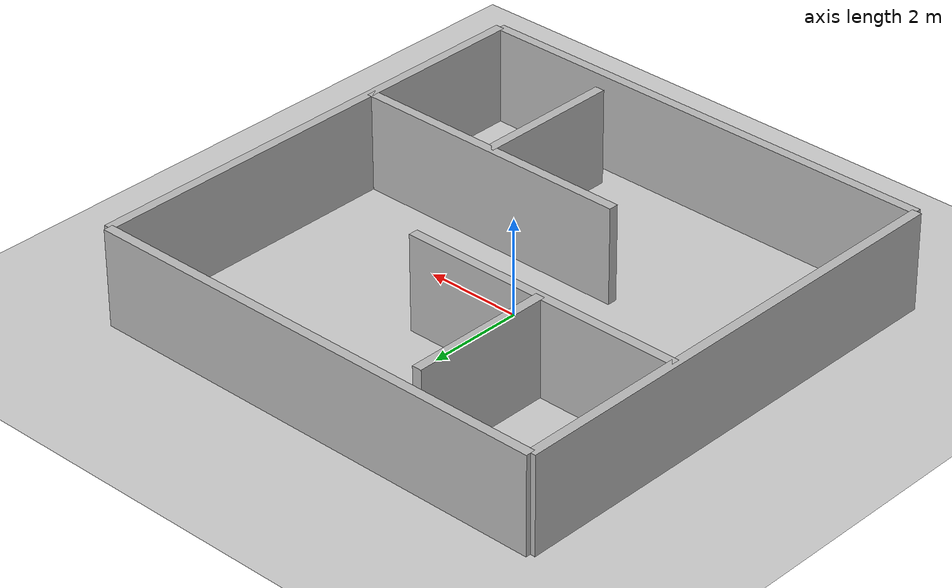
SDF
<?xml version="1.0" ?>
<sdf version="1.8">
  <world name="collapsed_structure">
    <!-- Required plugins for modern Gazebo -->
    <physics name="1ms" type="ignored">
      <max_step_size>0.001</max_step_size>
      <real_time_factor>1.0</real_time_factor>
    </physics>
    <plugin filename="gz-sim-physics-system" name="gz::sim::systems::Physics"></plugin>
    <plugin filename="gz-sim-user-commands-system" name="gz::sim::systems::UserCommands"></plugin>
    <plugin filename="gz-sim-scene-broadcaster-system" name="gz::sim::systems::SceneBroadcaster"></plugin>
    <plugin filename="gz-sim-sensors-system" name="gz::sim::systems::Sensors">
      <render_engine>ogre2</render_engine>
    </plugin>

    <light type="directional" name="sun">
      <cast_shadows>true</cast_shadows>
      <pose>0 0 10 0 0 0</pose>
      <diffuse>0.8 0.8 0.8 1</diffuse>
      <specular>0.2 0.2 0.2 1</specular>
      <attenuation>
        <range>1000</range>
        <constant>0.9</constant>
        <linear>0.01</linear>
        <quadratic>0.001</quadratic>
      </attenuation>
      <direction>-0.5 0.1 -0.9</direction>
    </light>

    <model name="ground_plane">
      <static>true</static>
      <link name="link">
        <collision name="collision">
          <geometry>
            <plane>
              <normal>0 0 1</normal>
              <size>100 100</size>
            </plane>
          </geometry>
        </collision>
        <visual name="visual">
          <geometry>
            <plane>
              <normal>0 0 1</normal>
              <size>100 100</size>
            </plane>
          </geometry>
          <material>
            <ambient>0.8 0.8 0.8 1</ambient>
            <diffuse>0.8 0.8 0.8 1</diffuse>
          </material>
        </visual>
      </link>
    </model>

    <!-- Outer Walls (10x10 area roughly) -->
    <model name="wall_outer_n">
      <static>true</static><pose>0 5 1 0 0 0</pose>
      <link name="link"><collision name="c"><geometry><box><size>10 0.2 2</size></box></geometry></collision><visual name="v"><geometry><box><size>10 0.2 2</size></box></geometry></visual></link>
    </model>
    <model name="wall_outer_s">
      <static>true</static><pose>0 -5 1 0 0 0</pose>
      <link name="link"><collision name="c"><geometry><box><size>10 0.2 2</size></box></geometry></collision><visual name="v"><geometry><box><size>10 0.2 2</size></box></geometry></visual></link>
    </model>
    <model name="wall_outer_e">
      <static>true</static><pose>5 0 1 0 0 1.5708</pose>
      <link name="link"><collision name="c"><geometry><box><size>10 0.2 2</size></box></geometry></collision><visual name="v"><geometry><box><size>10 0.2 2</size></box></geometry></visual></link>
    </model>
    <model name="wall_outer_w">
      <static>true</static><pose>-5 0 1 0 0 1.5708</pose>
      <link name="link"><collision name="c"><geometry><box><size>10 0.2 2</size></box></geometry></collision><visual name="v"><geometry><box><size>10 0.2 2</size></box></geometry></visual></link>
    </model>

    <!-- Internal walls -->

    <!-- Top horizontal divider: 6m long, flush with west wall, leaves 2m gap on east -->
    <model name="wall_int_1">
      <static>true</static><pose>-2 1.5 1 0 0 0</pose>
      <link name="link"><collision name="c"><geometry><box><size>6 0.2 2</size></box></geometry></collision><visual name="v"><geometry><box><size>6 0.2 2</size></box></geometry></visual></link>
    </model>

    <!-- Bottom horizontal divider: 6m long, flush with east wall, leaves 2m gap on west -->
    <model name="wall_int_2">
      <static>true</static><pose>2 -1.5 1 0 0 0</pose>
      <link name="link"><collision name="c"><geometry><box><size>6 0.2 2</size></box></geometry></collision><visual name="v"><geometry><box><size>6 0.2 2</size></box></geometry></visual></link>
    </model>

    <!-- Upper-left vertical divider: 3m tall (y from 1.5 to 4.5), leaves 0.5m gap at top for SLAM interest -->
    <model name="wall_int_3">
      <static>true</static><pose>-2 3 1 0 0 1.5708</pose>
      <link name="link"><collision name="c"><geometry><box><size>3 0.2 2</size></box></geometry></collision><visual name="v"><geometry><box><size>3 0.2 2</size></box></geometry></visual></link>
    </model>

    <!-- Lower-right vertical divider: 3m tall (y from -4.5 to -1.5) -->
    <model name="wall_int_4">
      <static>true</static><pose>2 -3 1 0 0 1.5708</pose>
      <link name="link"><collision name="c"><geometry><box><size>3 0.2 2</size></box></geometry></collision><visual name="v"><geometry><box><size>3 0.2 2</size></box></geometry></visual></link>
    </model>

  </world>
</sdf>
